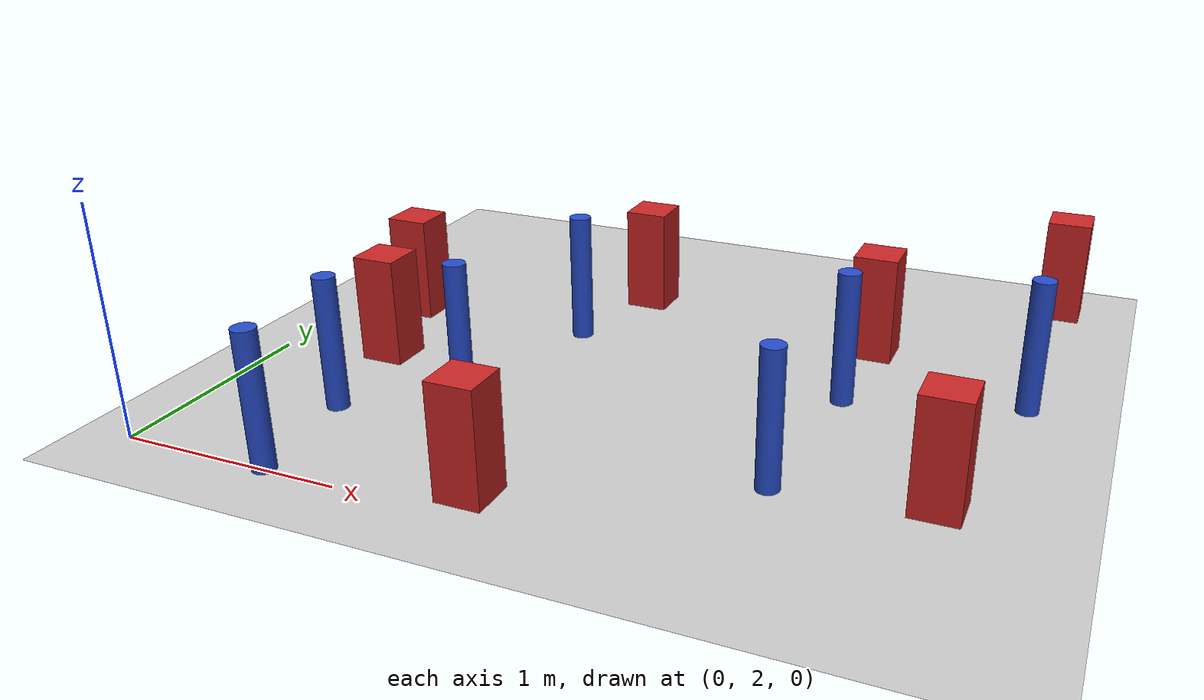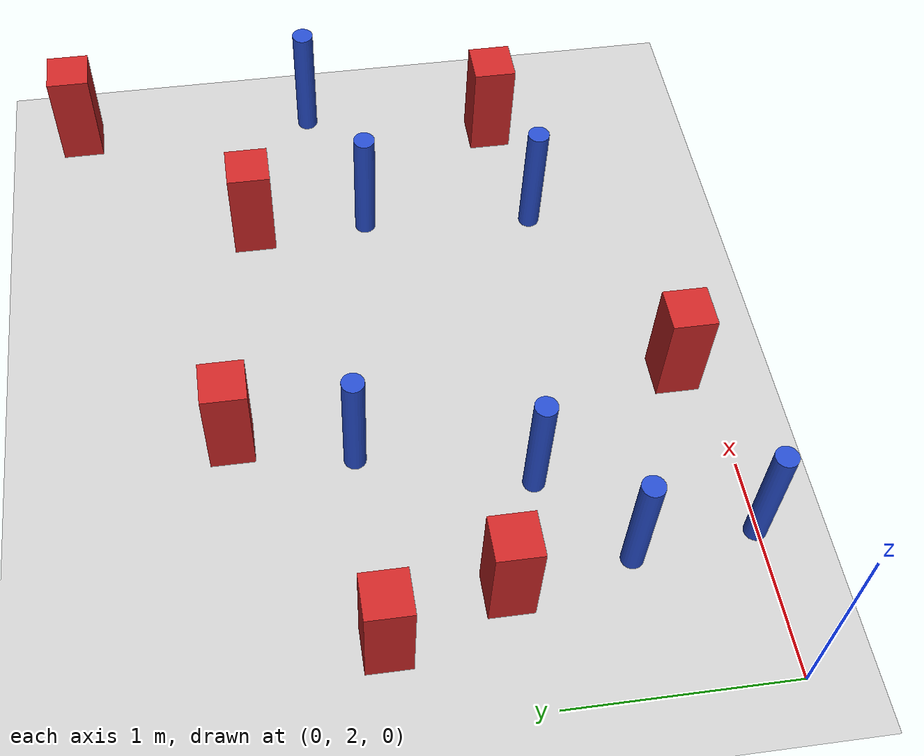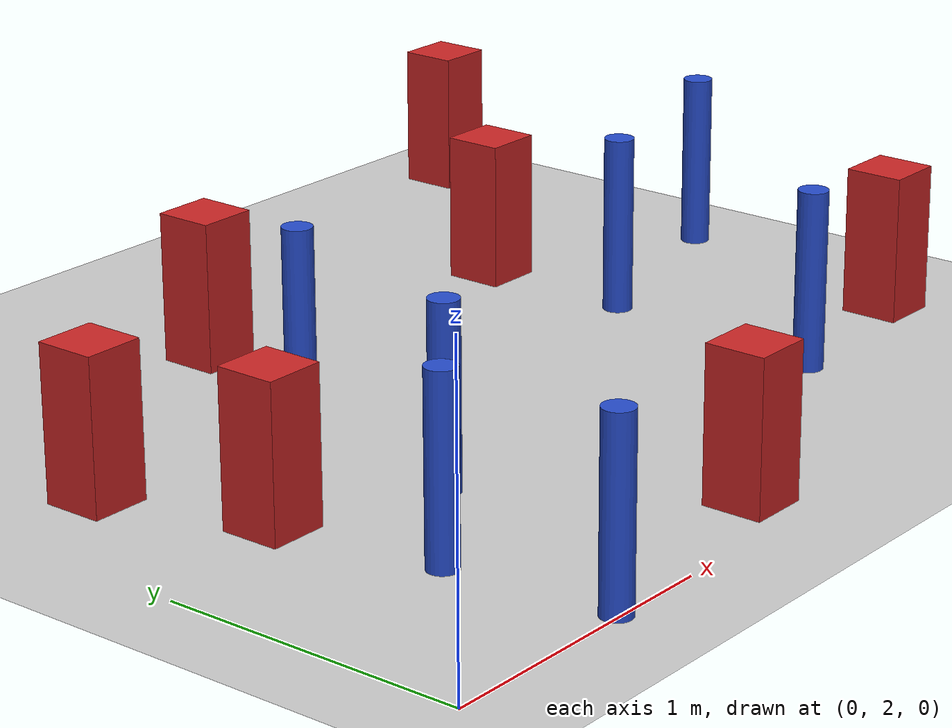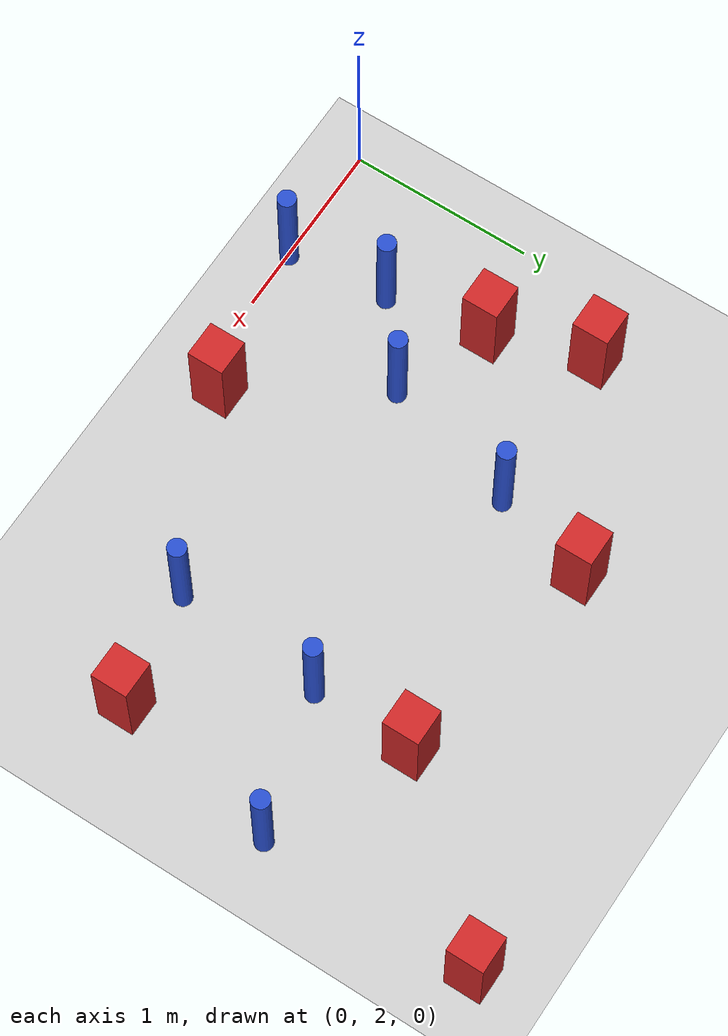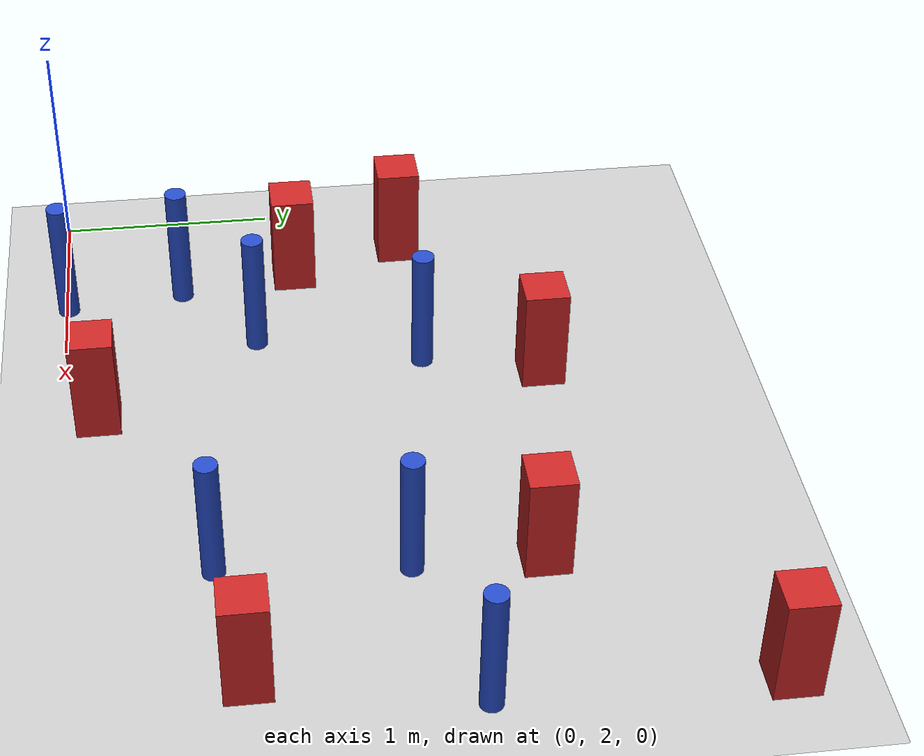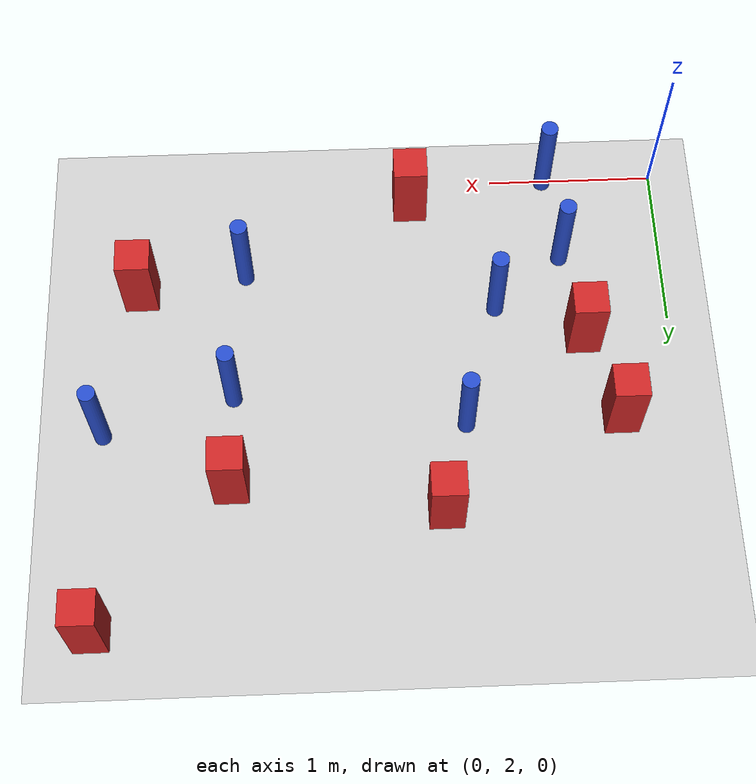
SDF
<sdf version="1.6">
 <world name="default">
  <model name="ground_plane">
   <static>1</static>
   <link name="link">
    <collision name="collision">
     <geometry><plane><normal>0 0 1</normal><size>100 100</size></plane></geometry>
     <surface><friction><ode><mu>100</mu><mu2>50</mu2></ode></friction></surface>
    </collision>
    <visual name="visual">
     <cast_shadows>0</cast_shadows>
     <geometry><plane><normal>0 0 1</normal><size>100 100</size></plane></geometry>
     <material>
      <ambient>1.0 1.0 1.0 1.0</ambient>
      <diffuse>0.8 0.8 0.8 1.0</diffuse>
      <specular>0.01 0.01 0.01 1.000000</specular>
     </material>
    </visual>
   </link>
  </model>
  <model name="pole_obstacle30">
   <static>true</static>
   <pose>2.52723140461 2.62695683932 7.38925637345e-09 -8.47170692798e-08 1.24976764939e-08 -1.74513093025e-07</pose>
   <link name="link">
    <pose>0 0 0.3 0 -0 0</pose>
    <inertial>
     <mass>1</mass>
     <inertia><ixx>0.145833</ixx><ixy>0</ixy><ixz>0</ixz><iyy>0.145833</iyy><iyz>0</iyz><izz>0.125</izz></inertia>
    </inertial>
    <collision name="collision">
     <geometry><cylinder><radius>0.05</radius><length>.6</length></cylinder></geometry>
    </collision>
    <visual name="visual">
     <geometry><cylinder><radius>0.05</radius><length>.6</length></cylinder></geometry>
     <material>
      <script><name>Gazebo/Blue</name><uri>file://media/materials/scripts/gazebo.material</uri></script>
     </material>
    </visual>
   </link>
  </model>
  <model name="pole_obstacle41">
   <static>true</static>
   <pose>1.24746454431 3.65702400959 7.38925637345e-09 -8.47170692799e-08 1.24976765053e-08 -1.74513093017e-07</pose>
   <link name="link">
    <pose>0 0 0.3 0 -0 0</pose>
    <inertial>
     <mass>1</mass>
     <inertia><ixx>0.145833</ixx><ixy>0</ixy><ixz>0</ixz><iyy>0.145833</iyy><iyz>0</iyz><izz>0.125</izz></inertia>
    </inertial>
    <collision name="collision">
     <geometry><cylinder><radius>0.05</radius><length>.6</length></cylinder></geometry>
    </collision>
    <visual name="visual">
     <geometry><cylinder><radius>0.05</radius><length>.6</length></cylinder></geometry>
     <material>
      <script><name>Gazebo/Blue</name><uri>file://media/materials/scripts/gazebo.material</uri></script>
     </material>
    </visual>
   </link>
  </model>
  <model name="pole_obstacle57">
   <static>true</static>
   <pose>0.613665370232 2.56215941622 7.38925637345e-09 -8.47170692799e-08 1.2497676509e-08 -1.74513093016e-07</pose>
   <link name="link">
    <pose>0 0 0.3 0 -0 0</pose>
    <inertial>
     <mass>1</mass>
     <inertia><ixx>0.145833</ixx><ixy>0</ixy><ixz>0</ixz><iyy>0.145833</iyy><iyz>0</iyz><izz>0.125</izz></inertia>
    </inertial>
    <collision name="collision">
     <geometry><cylinder><radius>0.05</radius><length>.6</length></cylinder></geometry>
    </collision>
    <visual name="visual">
     <geometry><cylinder><radius>0.05</radius><length>.6</length></cylinder></geometry>
     <material>
      <script><name>Gazebo/Blue</name><uri>file://media/materials/scripts/gazebo.material</uri></script>
     </material>
    </visual>
   </link>
  </model>
  <model name="pole_obstacle75">
   <static>true</static>
   <pose>1.02993767477 2.89853686262 7.38925637345e-09 -8.471706928e-08 1.2497676505e-08 -1.74513093017e-07</pose>
   <link name="link">
    <pose>0 0 0.3 0 -0 0</pose>
    <inertial>
     <mass>1</mass>
     <inertia><ixx>0.145833</ixx><ixy>0</ixy><ixz>0</ixz><iyy>0.145833</iyy><iyz>0</iyz><izz>0.125</izz></inertia>
    </inertial>
    <collision name="collision">
     <geometry><cylinder><radius>0.05</radius><length>.6</length></cylinder></geometry>
    </collision>
    <visual name="visual">
     <geometry><cylinder><radius>0.05</radius><length>.6</length></cylinder></geometry>
     <material>
      <script><name>Gazebo/Blue</name><uri>file://media/materials/scripts/gazebo.material</uri></script>
     </material>
    </visual>
   </link>
  </model>
  <model name="square_post_obstacle103">
   <static>true</static>
   <pose>3.36276971674 4.83112434174 1.91545236811e-07 -7.35059704564e-06 1.12565212e-07 2.39332434364e-05</pose>
   <link name="link">
    <pose>0 0 0.25 0 -0 0</pose>
    <inertial>
     <mass>100</mass>
     <inertia>
      <ixx>0.166667</ixx>
      <ixy>0</ixy>
      <ixz>0</ixz>
      <iyy>0.166667</iyy>
      <iyz>0</iyz>
      <izz>0.166667</izz>
     </inertia>
    </inertial>
    <collision name="collision"><geometry><box><size>.2 .2 .5</size></box></geometry></collision>
    <visual name="visual">
     <geometry><box><size>.2 .2 .5</size></box></geometry>
     <material>
      <script><name>Gazebo/Red</name><uri>file://media/materials/scripts/gazebo.material</uri></script>
     </material>
    </visual>
   </link>
  </model>
  <model name="square_post_obstacle110">
   <static>true</static>
   <pose>1.51268201704 2.15584435601 1.91545236811e-07 -7.35059704564e-06 1.12565212e-07 2.39332434364e-05</pose>
   <link name="link">
    <pose>0 0 0.25 0 -0 0</pose>
    <inertial>
     <mass>100</mass>
     <inertia>
      <ixx>0.166667</ixx>
      <ixy>0</ixy>
      <ixz>0</ixz>
      <iyy>0.166667</iyy>
      <iyz>0</iyz>
      <izz>0.166667</izz>
     </inertia>
    </inertial>
    <collision name="collision"><geometry><box><size>.2 .2 .5</size></box></geometry></collision>
    <visual name="visual">
     <geometry><box><size>.2 .2 .5</size></box></geometry>
     <material>
      <script><name>Gazebo/Red</name><uri>file://media/materials/scripts/gazebo.material</uri></script>
     </material>
    </visual>
   </link>
  </model>
  <model name="pole_obstacle134">
   <static>true</static>
   <pose>2.59767353793 3.44183365562 7.38925637345e-09 -8.47170692798e-08 1.24976764939e-08 -1.74513093025e-07</pose>
   <link name="link">
    <pose>0 0 0.3 0 -0 0</pose>
    <inertial>
     <mass>1</mass>
     <inertia><ixx>0.145833</ixx><ixy>0</ixy><ixz>0</ixz><iyy>0.145833</iyy><iyz>0</iyz><izz>0.125</izz></inertia>
    </inertial>
    <collision name="collision">
     <geometry><cylinder><radius>0.05</radius><length>.6</length></cylinder></geometry>
    </collision>
    <visual name="visual">
     <geometry><cylinder><radius>0.05</radius><length>.6</length></cylinder></geometry>
     <material>
      <script><name>Gazebo/Blue</name><uri>file://media/materials/scripts/gazebo.material</uri></script>
     </material>
    </visual>
   </link>
  </model>
  <model name="pole_obstacle150">
   <static>true</static>
   <pose>3.35147035694 3.65560660579 7.38925637345e-09 -8.47170692798e-08 1.24976764939e-08 -1.74513093025e-07</pose>
   <link name="link">
    <pose>0 0 0.3 0 -0 0</pose>
    <inertial>
     <mass>1</mass>
     <inertia><ixx>0.145833</ixx><ixy>0</ixy><ixz>0</ixz><iyy>0.145833</iyy><iyz>0</iyz><izz>0.125</izz></inertia>
    </inertial>
    <collision name="collision">
     <geometry><cylinder><radius>0.05</radius><length>.6</length></cylinder></geometry>
    </collision>
    <visual name="visual">
     <geometry><cylinder><radius>0.05</radius><length>.6</length></cylinder></geometry>
     <material>
      <script><name>Gazebo/Blue</name><uri>file://media/materials/scripts/gazebo.material</uri></script>
     </material>
    </visual>
   </link>
  </model>
  <model name="square_post_obstacle154">
   <static>true</static>
   <pose>3.15017556188 2.73027083253 1.91545236811e-07 -7.35059704564e-06 1.12565212e-07 2.39332434364e-05</pose>
   <link name="link">
    <pose>0 0 0.25 0 -0 0</pose>
    <inertial>
     <mass>100</mass>
     <inertia>
      <ixx>0.166667</ixx>
      <ixy>0</ixy>
      <ixz>0</ixz>
      <iyy>0.166667</iyy>
      <iyz>0</iyz>
      <izz>0.166667</izz>
     </inertia>
    </inertial>
    <collision name="collision"><geometry><box><size>.2 .2 .5</size></box></geometry></collision>
    <visual name="visual">
     <geometry><box><size>.2 .2 .5</size></box></geometry>
     <material>
      <script><name>Gazebo/Red</name><uri>file://media/materials/scripts/gazebo.material</uri></script>
     </material>
    </visual>
   </link>
  </model>
  <model name="square_post_obstacle171">
   <static>true</static>
   <pose>0.523329339738 3.11106323171 1.91545236811e-07 -7.35059704564e-06 1.12565212e-07 2.39332434364e-05</pose>
   <link name="link">
    <pose>0 0 0.25 0 -0 0</pose>
    <inertial>
     <mass>100</mass>
     <inertia>
      <ixx>0.166667</ixx>
      <ixy>0</ixy>
      <ixz>0</ixz>
      <iyy>0.166667</iyy>
      <iyz>0</iyz>
      <izz>0.166667</izz>
     </inertia>
    </inertial>
    <collision name="collision"><geometry><box><size>.2 .2 .5</size></box></geometry></collision>
    <visual name="visual">
     <geometry><box><size>.2 .2 .5</size></box></geometry>
     <material>
      <script><name>Gazebo/Red</name><uri>file://media/materials/scripts/gazebo.material</uri></script>
     </material>
    </visual>
   </link>
  </model>
  <model name="square_post_obstacle189">
   <static>true</static>
   <pose>1.39449797493 4.19047944259 1.91545236811e-07 -7.35059704564e-06 1.12565212e-07 2.39332434364e-05</pose>
   <link name="link">
    <pose>0 0 0.25 0 -0 0</pose>
    <inertial>
     <mass>100</mass>
     <inertia>
      <ixx>0.166667</ixx>
      <ixy>0</ixy>
      <ixz>0</ixz>
      <iyy>0.166667</iyy>
      <iyz>0</iyz>
      <izz>0.166667</izz>
     </inertia>
    </inertial>
    <collision name="collision"><geometry><box><size>.2 .2 .5</size></box></geometry></collision>
    <visual name="visual">
     <geometry><box><size>.2 .2 .5</size></box></geometry>
     <material>
      <script><name>Gazebo/Red</name><uri>file://media/materials/scripts/gazebo.material</uri></script>
     </material>
    </visual>
   </link>
  </model>
  <model name="square_post_obstacle193">
   <static>true</static>
   <pose>0.349546251532 3.63979893119 1.91545236811e-07 -7.35059704564e-06 1.12565212e-07 2.39332434364e-05</pose>
   <link name="link">
    <pose>0 0 0.25 0 -0 0</pose>
    <inertial>
     <mass>100</mass>
     <inertia>
      <ixx>0.166667</ixx>
      <ixy>0</ixy>
      <ixz>0</ixz>
      <iyy>0.166667</iyy>
      <iyz>0</iyz>
      <izz>0.166667</izz>
     </inertia>
    </inertial>
    <collision name="collision"><geometry><box><size>.2 .2 .5</size></box></geometry></collision>
    <visual name="visual">
     <geometry><box><size>.2 .2 .5</size></box></geometry>
     <material>
      <script><name>Gazebo/Red</name><uri>file://media/materials/scripts/gazebo.material</uri></script>
     </material>
    </visual>
   </link>
  </model>
  <model name="pole_obstacle209">
   <static>true</static>
   <pose>0.673844192873 2.01164763277 7.38925637345e-09 -8.47170692799e-08 1.24976765e-08 -1.7451309302e-07</pose>
   <link name="link">
    <pose>0 0 0.3 0 -0 0</pose>
    <inertial>
     <mass>1</mass>
     <inertia><ixx>0.145833</ixx><ixy>0</ixy><ixz>0</ixz><iyy>0.145833</iyy><iyz>0</iyz><izz>0.125</izz></inertia>
    </inertial>
    <collision name="collision">
     <geometry><cylinder><radius>0.05</radius><length>.6</length></cylinder></geometry>
    </collision>
    <visual name="visual">
     <geometry><cylinder><radius>0.05</radius><length>.6</length></cylinder></geometry>
     <material>
      <script><name>Gazebo/Blue</name><uri>file://media/materials/scripts/gazebo.material</uri></script>
     </material>
    </visual>
   </link>
  </model>
  <model name="square_post_obstacle211">
   <static>true</static>
   <pose>2.60446704611 3.99567786176 1.91545236811e-07 -7.35059704564e-06 1.12565212e-07 2.39332434364e-05</pose>
   <link name="link">
    <pose>0 0 0.25 0 -0 0</pose>
    <inertial>
     <mass>100</mass>
     <inertia>
      <ixx>0.166667</ixx>
      <ixy>0</ixy>
      <ixz>0</ixz>
      <iyy>0.166667</iyy>
      <iyz>0</iyz>
      <izz>0.166667</izz>
     </inertia>
    </inertial>
    <collision name="collision"><geometry><box><size>.2 .2 .5</size></box></geometry></collision>
    <visual name="visual">
     <geometry><box><size>.2 .2 .5</size></box></geometry>
     <material>
      <script><name>Gazebo/Red</name><uri>file://media/materials/scripts/gazebo.material</uri></script>
     </material>
    </visual>
   </link>
  </model>
 </world>
</sdf>
